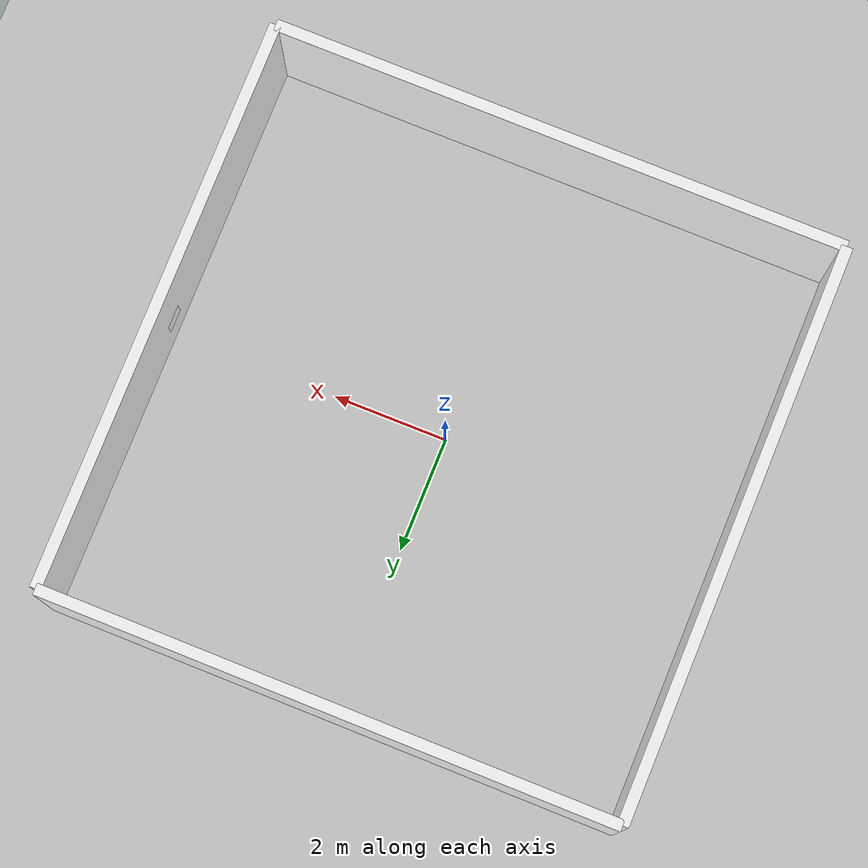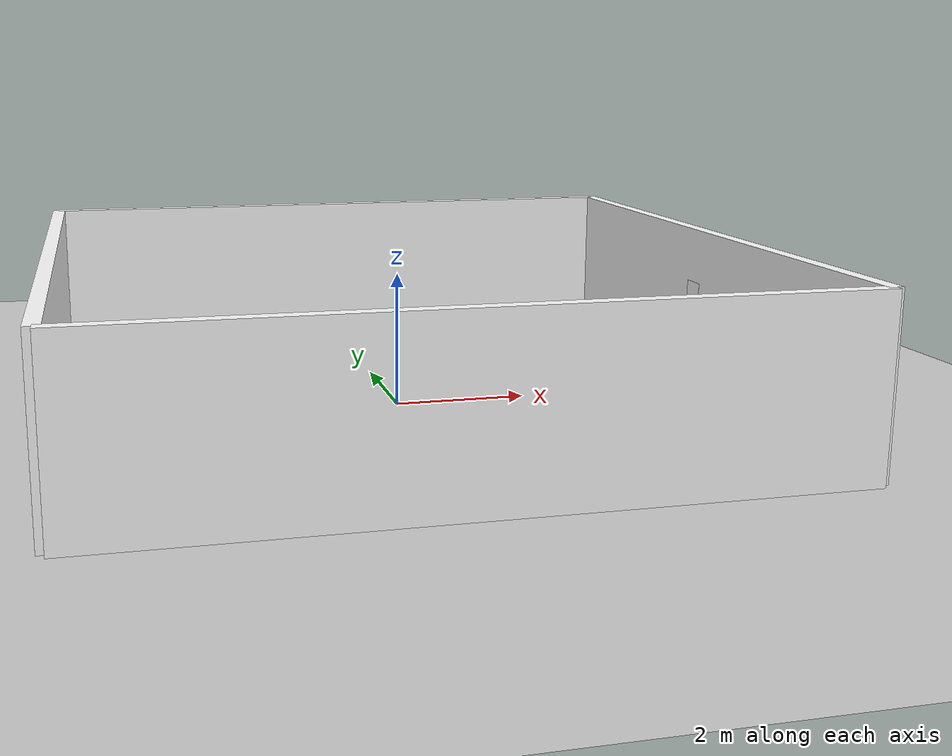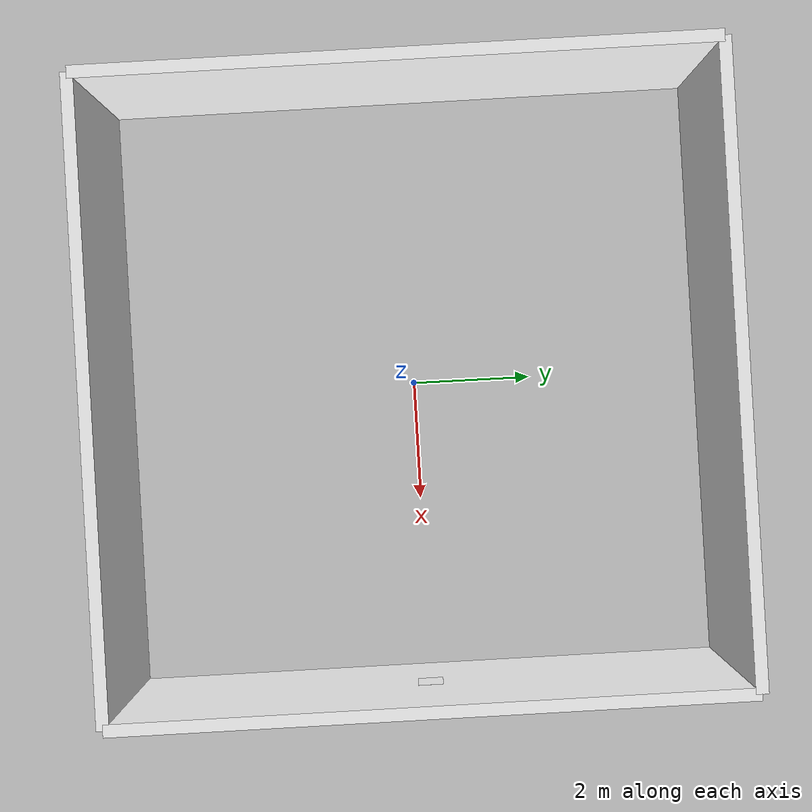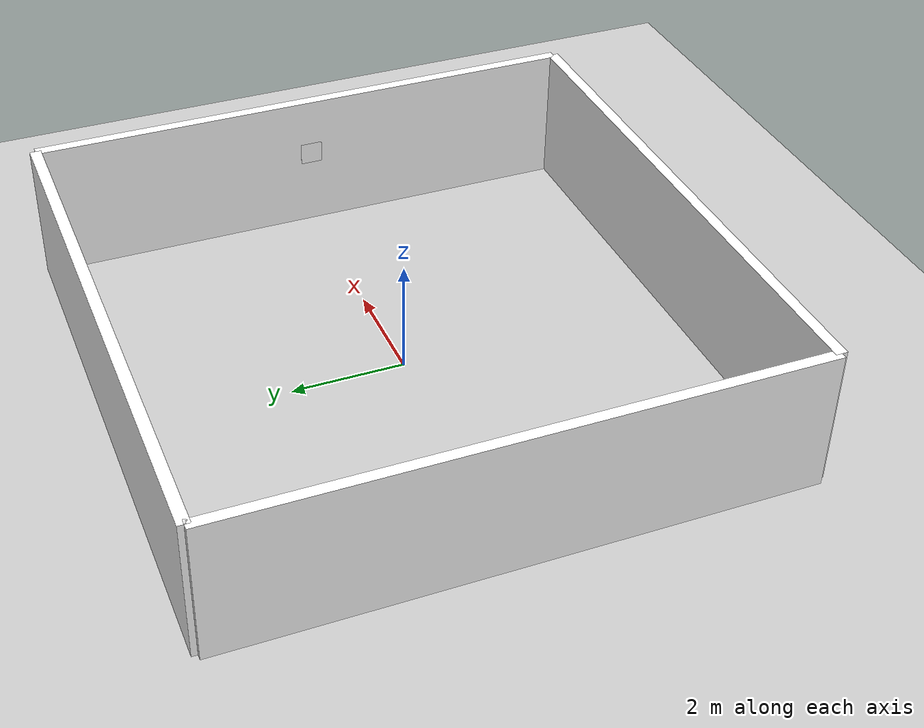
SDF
<?xml version="1.0"?>
<sdf version="1.6">
<world name="room_world">
<plugin
filename="gz-sim-physics-system"
name="gz::sim::systems::Physics">
</plugin>
<plugin
filename="gz-sim-user-commands-system"
name="gz::sim::systems::UserCommands">
</plugin>
<plugin
filename="gz-sim-scene-broadcaster-system"
name="gz::sim::systems::SceneBroadcaster">
</plugin>
<plugin
filename="gz-sim-sensors-system"
name="gz::sim::systems::Sensors">
<render_engine>ogre2</render_engine>
</plugin>
<plugin
filename="gz-sim-imu-system"
name="gz::sim::systems::Imu">
</plugin>
<include>
<uri>
 https://fuel.gazebosim.org/1.0/OpenRobotics/models/Ground Plane
</uri>
</include>
<include>
<uri>
 https://fuel.gazebosim.org/1.0/OpenRobotics/models/Sun
</uri>
</include>

<!-- North Wall -->
<model name="north_wall">
  <static>true</static>
  <pose>5 0 1.25 0 0 0</pose>
  <link name="link">
    <collision name="collision">
      <geometry>
        <box>
          <size>0.2 10 2.5</size>
        </box>
      </geometry>
    </collision>
    <visual name="visual">
      <geometry>
        <box>
          <size>0.2 10 2.5</size>
        </box>
      </geometry>
      <material>
        <ambient>1 1 1 1</ambient>
        <diffuse>1 1 1 1</diffuse>
      </material>
    </visual>
  </link>
</model>

<!-- South Wall -->
<model name="south_wall">
  <static>true</static>
  <pose>-5 0 1.25 0 0 0</pose>
  <link name="link">
    <collision name="collision">
      <geometry>
        <box>
          <size>0.2 10 2.5</size>
        </box>
      </geometry>
    </collision>
    <visual name="visual">
      <geometry>
        <box>
          <size>0.2 10 2.5</size>
        </box>
      </geometry>
      <material>
        <ambient>1 1 1 1</ambient>
        <diffuse>1 1 1 1</diffuse>
      </material>
    </visual>
  </link>
</model>

<!-- East Wall -->
<model name="east_wall">
  <static>true</static>
  <pose>0 5 1.25 0 0 1.5708</pose>
  <link name="link">
    <collision name="collision">
      <geometry>
        <box>
          <size>0.2 10 2.5</size>
        </box>
      </geometry>
    </collision>
    <visual name="visual">
      <geometry>
        <box>
          <size>0.2 10 2.5</size>
        </box>
      </geometry>
      <material>
        <ambient>1 1 1 1</ambient>
        <diffuse>1 1 1 1</diffuse>
      </material>
    </visual>
  </link>
</model>

<!-- West Wall -->
<model name="west_wall">
  <static>true</static>
  <pose>0 -5 1.25 0 0 1.5708</pose>
  <link name="link">
    <collision name="collision">
      <geometry>
        <box>
          <size>0.2 10 2.5</size>
        </box>
      </geometry>
    </collision>
    <visual name="visual">
      <geometry>
        <box>
          <size>0.2 10 2.5</size>
        </box>
      </geometry>
      <material>
        <ambient>1 1 1 1</ambient>
        <diffuse>1 1 1 1</diffuse>
      </material>
    </visual>
  </link>
</model>

<!-- ArUco Marker-->
<model name="aruco_marker_1">
  <static>true</static>
  <pose>4.8 0 1.5 0 0 3.14159</pose>
  <link name="marker_link">
    <visual name="marker_visual">
      <geometry>
        <box>
          <size>0.001 0.4 0.4</size>
        </box>
      </geometry>
      <material>
        <ambient>1 1 1 1</ambient>
        <diffuse>1 1 1 1</diffuse>
        <pbr>
          <metal>
            <albedo_map>file:///home/vedant/Visiloc/ros_ws/src/ignition_robot/models/aruco_marker_1/materials/textures/aruco_marker_1.png</albedo_map>
            <metalness>0.0</metalness>
            <roughness>0.5</roughness>
          </metal>
        </pbr>
      </material>
    </visual>
  </link>
</model>

<scene>
<ambient>0.7 0.7 0.7 1</ambient>
<background>0.7 0.8 0.9 1</background>
<shadows>false</shadows>
</scene>

<gui fullscreen='0'>
<camera name='user_camera'>
<pose frame=''>-8 -8 8 0 0.6 0.785</pose>
<view_controller>orbit</view_controller>
<projection_type>perspective</projection_type>
</camera>
</gui>

<physics type="ode">
<real_time_update_rate>1000.0</real_time_update_rate>
<max_step_size>0.001</max_step_size>
<real_time_factor>1</real_time_factor>
<ode>
<solver>
<type>quick</type>
<iters>150</iters>
<precon_iters>0</precon_iters>
<sor>1.400000</sor>
<use_dynamic_moi_rescaling>1</use_dynamic_moi_rescaling>
</solver>
<constraints>
<cfm>0.00001</cfm>
<erp>0.2</erp>
<contact_max_correcting_vel>2000.000000</contact_max_correcting_vel>
<contact_surface_layer>0.01000</contact_surface_layer>
</constraints>
</ode>
</physics>
</world>
</sdf>
